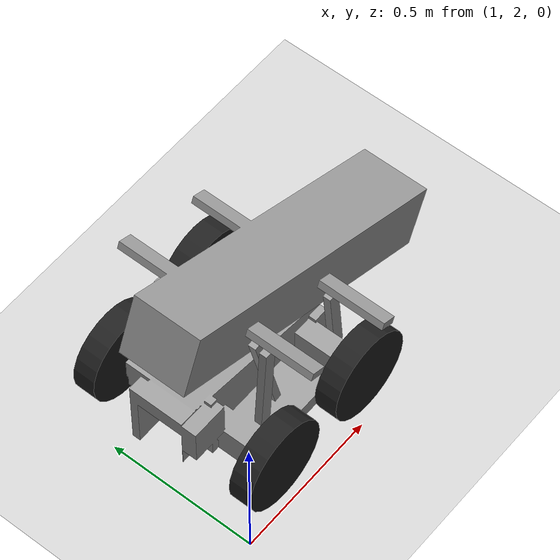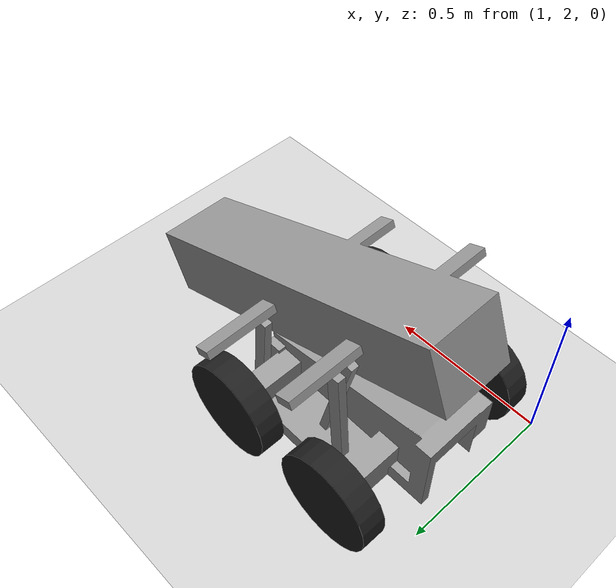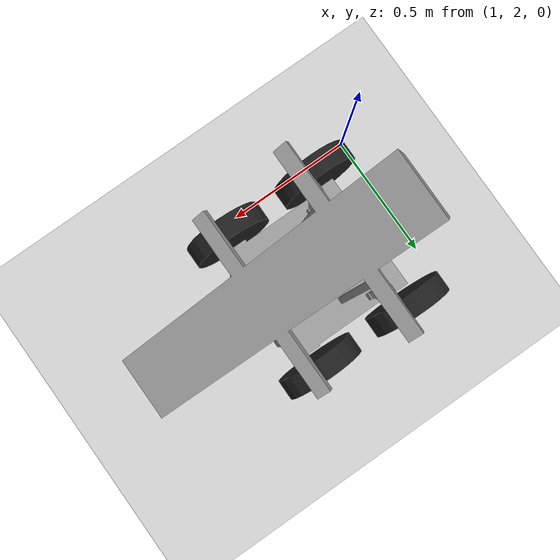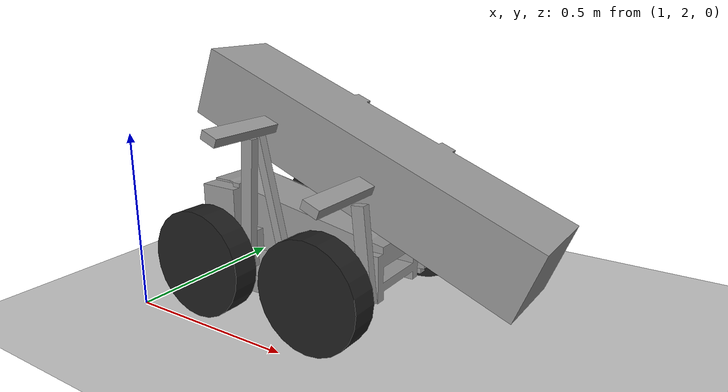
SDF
<sdf version="1.6">
 <world name="default">
  <model name="ground_plane">
   <static>1</static>
   <link name="link">
    <collision name="collision">
     <geometry><plane><normal>0 0 1</normal><size>100 100</size></plane></geometry>
     <surface><friction><ode><mu>100</mu><mu2>50</mu2></ode></friction></surface>
    </collision>
    <visual name="visual">
     <cast_shadows>0</cast_shadows>
     <geometry><plane><normal>0 0 1</normal><size>100 100</size></plane></geometry>
     <material>
      <script><uri>file://media/materials/scripts/gazebo.material</uri><name>Gazebo/Grey</name></script>
     </material>
    </visual>
   </link>
  </model>
  <model name="Digger_3">
   <link name="base_link">
    <pose>-0.180752 0.18451 -0.096283 0 -0 0</pose>
    <inertial>
     <mass>30</mass>
     <inertia>
      <ixx>0.166667</ixx>
      <ixy>0</ixy>
      <ixz>0</ixz>
      <iyy>0.166667</iyy>
      <iyz>0</iyz>
      <izz>0.166667</izz>
     </inertia>
    </inertial>
    <visual name="visual">
     <pose>0 0 0 1.5708 0 -1.5708</pose>
     <geometry>
      <mesh>
       <uri>/home/ssr/ros_kinetic/rmc_dev_ws/src/2018_robot/simulations/gazebo_rmc_sim/models/Digger/Simple_Chassis.stl</uri>
       <scale>0.001 0.001 0.001</scale>
      </mesh>
     </geometry>
     <material>
      <lighting>1</lighting>
      <script><uri>file://media/materials/scripts/gazebo.material</uri><name>Gazebo/Grey</name></script>
      <ambient>0.3 0.3 0.3 1</ambient>
      <diffuse>0.7 0.7 0.7 1</diffuse>
      <specular>0.01 0.01 0.01 1</specular>
      <emissive>0 0 0 1</emissive>
      <shader type="vertex"><normal_map>__default__</normal_map></shader>
     </material>
    </visual>
    <collision name="collision">
     <pose>0 0 0 1.5708 0 -1.5708</pose>
     <geometry>
      <mesh>
       <uri>/home/ssr/ros_kinetic/rmc_dev_ws/src/2018_robot/simulations/gazebo_rmc_sim/models/Digger/Simple_Chassis.stl</uri>
       <scale>0.001 0.001 0.001</scale>
      </mesh>
     </geometry>
     <surface>
      <friction>
       <ode><mu>1</mu><mu2>1</mu2><fdir1>0 0 0</fdir1><slip1>0</slip1><slip2>0</slip2></ode>
       <torsional>
        <coefficient>1</coefficient>
        <patch_radius>0</patch_radius>
        <surface_radius>0</surface_radius>
        <use_patch_radius>1</use_patch_radius>
        <ode><slip>0</slip></ode>
       </torsional>
      </friction>
      <bounce><restitution_coefficient>0</restitution_coefficient><threshold>1e+06</threshold></bounce>
      <contact>
       <collide_without_contact>0</collide_without_contact>
       <collide_without_contact_bitmask>1</collide_without_contact_bitmask>
       <collide_bitmask>1</collide_bitmask>
       <ode>
        <soft_cfm>0</soft_cfm>
        <soft_erp>0.2</soft_erp>
        <kp>1e+13</kp>
        <kd>1</kd>
        <max_vel>0.01</max_vel>
        <min_depth>0</min_depth>
       </ode>
       <bullet>
        <split_impulse>1</split_impulse>
        <split_impulse_penetration_threshold>-0.01</split_impulse_penetration_threshold>
        <soft_cfm>0</soft_cfm>
        <soft_erp>0.2</soft_erp>
        <kp>1e+13</kp>
        <kd>1</kd>
       </bullet>
      </contact>
     </surface>
    </collision>
   </link>
   <link name="arm">
    <pose>-0.325179 0.069854 0.358325 1.19198 -0 -1.5708</pose>
    <inertial>
     <mass>1</mass>
     <inertia>
      <ixx>0.166667</ixx>
      <ixy>0</ixy>
      <ixz>0</ixz>
      <iyy>0.166667</iyy>
      <iyz>0</iyz>
      <izz>0.166667</izz>
     </inertia>
    </inertial>
    <visual name="visual">
     <geometry>
      <mesh>
       <uri>/home/ssr/ros_kinetic/rmc_dev_ws/src/2018_robot/simulations/gazebo_rmc_sim/models/Digger/Simple_Arm.stl</uri>
       <scale>0.001 0.001 0.001</scale>
      </mesh>
     </geometry>
     <material>
      <lighting>1</lighting>
      <script><uri>file://media/materials/scripts/gazebo.material</uri><name>Gazebo/Grey</name></script>
      <ambient>0.3 0.3 0.3 1</ambient>
      <diffuse>0.7 0.7 0.7 1</diffuse>
      <specular>0.01 0.01 0.01 1</specular>
      <emissive>0 0 0 1</emissive>
      <shader type="vertex"><normal_map>__default__</normal_map></shader>
     </material>
    </visual>
   </link>
   <link name="back_left_actuator_bottom">
    <pose>-0.080752 0.146804 -0.01705 0 0.072198 0</pose>
    <inertial>
     <mass>1</mass>
     <inertia>
      <ixx>0.166667</ixx>
      <ixy>0</ixy>
      <ixz>0</ixz>
      <iyy>0.166667</iyy>
      <iyz>0</iyz>
      <izz>0.166667</izz>
     </inertia>
    </inertial>
    <visual name="visual">
     <pose>0 0 0.17195 0 -0 0</pose>
     <geometry><box><size>0.0381 0.0254 0.3429</size></box></geometry>
     <material>
      <lighting>1</lighting>
      <script><uri>file://media/materials/scripts/gazebo.material</uri><name>Gazebo/Grey</name></script>
      <ambient>0.3 0.3 0.3 1</ambient>
      <diffuse>0.7 0.7 0.7 1</diffuse>
      <specular>0.01 0.01 0.01 1</specular>
      <emissive>0 0 0 1</emissive>
      <shader type="vertex"><normal_map>__default__</normal_map></shader>
     </material>
    </visual>
    <collision name="collision">
     <pose>0 0 0.17195 0 -0 0</pose>
     <geometry><box><size>0.0381 0.0254 0.3429</size></box></geometry>
     <surface>
      <friction>
       <ode><mu>1</mu><mu2>1</mu2><fdir1>0 0 0</fdir1><slip1>0</slip1><slip2>0</slip2></ode>
       <torsional>
        <coefficient>1</coefficient>
        <patch_radius>0</patch_radius>
        <surface_radius>0</surface_radius>
        <use_patch_radius>1</use_patch_radius>
        <ode><slip>0</slip></ode>
       </torsional>
      </friction>
      <bounce><restitution_coefficient>0</restitution_coefficient><threshold>1e+06</threshold></bounce>
      <contact>
       <collide_without_contact>0</collide_without_contact>
       <collide_without_contact_bitmask>1</collide_without_contact_bitmask>
       <collide_bitmask>1</collide_bitmask>
       <ode>
        <soft_cfm>0</soft_cfm>
        <soft_erp>0.2</soft_erp>
        <kp>1e+13</kp>
        <kd>1</kd>
        <max_vel>0.01</max_vel>
        <min_depth>0</min_depth>
       </ode>
       <bullet>
        <split_impulse>1</split_impulse>
        <split_impulse_penetration_threshold>-0.01</split_impulse_penetration_threshold>
        <soft_cfm>0</soft_cfm>
        <soft_erp>0.2</soft_erp>
        <kp>1e+13</kp>
        <kd>1</kd>
       </bullet>
      </contact>
     </surface>
    </collision>
   </link>
   <link name="back_left_actuator_top">
    <pose>-0.080752 0.146804 -0.01705 0 0.072198 0</pose>
    <inertial>
     <mass>1</mass>
     <inertia>
      <ixx>0.166667</ixx>
      <ixy>0</ixy>
      <ixz>0</ixz>
      <iyy>0.166667</iyy>
      <iyz>0</iyz>
      <izz>0.166667</izz>
     </inertia>
    </inertial>
    <visual name="visual">
     <pose>0 0 0.17195 0 -0 0</pose>
     <geometry><box><size>0.0381 0.0254 0.3429</size></box></geometry>
     <material>
      <lighting>1</lighting>
      <script><uri>file://media/materials/scripts/gazebo.material</uri><name>Gazebo/Red</name></script>
      <ambient>0.3 0.3 0.3 1</ambient>
      <diffuse>0.7 0.7 0.7 1</diffuse>
      <specular>0.01 0.01 0.01 1</specular>
      <emissive>0 0 0 1</emissive>
      <shader type="vertex"><normal_map>__default__</normal_map></shader>
     </material>
    </visual>
    <collision name="collision">
     <pose>0 0 0.17195 0 -0 0</pose>
     <geometry><box><size>0.0381 0.0254 0.3429</size></box></geometry>
     <surface>
      <friction>
       <ode><mu>1</mu><mu2>1</mu2><fdir1>0 0 0</fdir1><slip1>0</slip1><slip2>0</slip2></ode>
       <torsional>
        <coefficient>1</coefficient>
        <patch_radius>0</patch_radius>
        <surface_radius>0</surface_radius>
        <use_patch_radius>1</use_patch_radius>
        <ode><slip>0</slip></ode>
       </torsional>
      </friction>
      <bounce><restitution_coefficient>0</restitution_coefficient><threshold>1e+06</threshold></bounce>
      <contact>
       <collide_without_contact>0</collide_without_contact>
       <collide_without_contact_bitmask>1</collide_without_contact_bitmask>
       <collide_bitmask>1</collide_bitmask>
       <ode>
        <soft_cfm>0</soft_cfm>
        <soft_erp>0.2</soft_erp>
        <kp>1e+13</kp>
        <kd>1</kd>
        <max_vel>0.01</max_vel>
        <min_depth>0</min_depth>
       </ode>
       <bullet>
        <split_impulse>1</split_impulse>
        <split_impulse_penetration_threshold>-0.01</split_impulse_penetration_threshold>
        <soft_cfm>0</soft_cfm>
        <soft_erp>0.2</soft_erp>
        <kp>1e+13</kp>
        <kd>1</kd>
       </bullet>
      </contact>
     </surface>
    </collision>
   </link>
   <link name="back_right_actuator_bottom">
    <pose>-0.080752 -0.225027 -0.01705 0 0.072198 0</pose>
    <inertial>
     <mass>1</mass>
     <inertia>
      <ixx>0.166667</ixx>
      <ixy>0</ixy>
      <ixz>0</ixz>
      <iyy>0.166667</iyy>
      <iyz>0</iyz>
      <izz>0.166667</izz>
     </inertia>
    </inertial>
    <visual name="visual">
     <pose>0 0 0.17195 0 -0 0</pose>
     <geometry><box><size>0.0381 0.0254 0.3429</size></box></geometry>
     <material>
      <lighting>1</lighting>
      <script><uri>file://media/materials/scripts/gazebo.material</uri><name>Gazebo/Grey</name></script>
      <ambient>0.3 0.3 0.3 1</ambient>
      <diffuse>0.7 0.7 0.7 1</diffuse>
      <specular>0.01 0.01 0.01 1</specular>
      <emissive>0 0 0 1</emissive>
      <shader type="vertex"><normal_map>__default__</normal_map></shader>
     </material>
    </visual>
    <collision name="collision">
     <pose>0 0 0.17195 0 -0 0</pose>
     <geometry><box><size>0.0381 0.0254 0.3429</size></box></geometry>
     <surface>
      <friction>
       <ode><mu>1</mu><mu2>1</mu2><fdir1>0 0 0</fdir1><slip1>0</slip1><slip2>0</slip2></ode>
       <torsional>
        <coefficient>1</coefficient>
        <patch_radius>0</patch_radius>
        <surface_radius>0</surface_radius>
        <use_patch_radius>1</use_patch_radius>
        <ode><slip>0</slip></ode>
       </torsional>
      </friction>
      <bounce><restitution_coefficient>0</restitution_coefficient><threshold>1e+06</threshold></bounce>
      <contact>
       <collide_without_contact>0</collide_without_contact>
       <collide_without_contact_bitmask>1</collide_without_contact_bitmask>
       <collide_bitmask>1</collide_bitmask>
       <ode>
        <soft_cfm>0</soft_cfm>
        <soft_erp>0.2</soft_erp>
        <kp>1e+13</kp>
        <kd>1</kd>
        <max_vel>0.01</max_vel>
        <min_depth>0</min_depth>
       </ode>
       <bullet>
        <split_impulse>1</split_impulse>
        <split_impulse_penetration_threshold>-0.01</split_impulse_penetration_threshold>
        <soft_cfm>0</soft_cfm>
        <soft_erp>0.2</soft_erp>
        <kp>1e+13</kp>
        <kd>1</kd>
       </bullet>
      </contact>
     </surface>
    </collision>
   </link>
   <link name="back_right_actuator_top">
    <pose>-0.080752 -0.225027 -0.01705 0 0.072198 0</pose>
    <inertial>
     <mass>1</mass>
     <inertia>
      <ixx>0.166667</ixx>
      <ixy>0</ixy>
      <ixz>0</ixz>
      <iyy>0.166667</iyy>
      <iyz>0</iyz>
      <izz>0.166667</izz>
     </inertia>
    </inertial>
    <visual name="visual">
     <pose>0 0 0.17195 0 -0 0</pose>
     <geometry><box><size>0.0381 0.0254 0.3429</size></box></geometry>
     <material>
      <lighting>1</lighting>
      <script><uri>file://media/materials/scripts/gazebo.material</uri><name>Gazebo/Red</name></script>
      <ambient>0.3 0.3 0.3 1</ambient>
      <diffuse>0.7 0.7 0.7 1</diffuse>
      <specular>0.01 0.01 0.01 1</specular>
      <emissive>0 0 0 1</emissive>
      <shader type="vertex"><normal_map>__default__</normal_map></shader>
     </material>
    </visual>
    <collision name="collision">
     <pose>0 0 0.17195 0 -0 0</pose>
     <geometry><box><size>0.0381 0.0254 0.3429</size></box></geometry>
     <surface>
      <friction>
       <ode><mu>1</mu><mu2>1</mu2><fdir1>0 0 0</fdir1><slip1>0</slip1><slip2>0</slip2></ode>
       <torsional>
        <coefficient>1</coefficient>
        <patch_radius>0</patch_radius>
        <surface_radius>0</surface_radius>
        <use_patch_radius>1</use_patch_radius>
        <ode><slip>0</slip></ode>
       </torsional>
      </friction>
      <bounce><restitution_coefficient>0</restitution_coefficient><threshold>1e+06</threshold></bounce>
      <contact>
       <collide_without_contact>0</collide_without_contact>
       <collide_without_contact_bitmask>1</collide_without_contact_bitmask>
       <collide_bitmask>1</collide_bitmask>
       <ode>
        <soft_cfm>0</soft_cfm>
        <soft_erp>0.2</soft_erp>
        <kp>1e+13</kp>
        <kd>1</kd>
        <max_vel>0.01</max_vel>
        <min_depth>0</min_depth>
       </ode>
       <bullet>
        <split_impulse>1</split_impulse>
        <split_impulse_penetration_threshold>-0.01</split_impulse_penetration_threshold>
        <soft_cfm>0</soft_cfm>
        <soft_erp>0.2</soft_erp>
        <kp>1e+13</kp>
        <kd>1</kd>
       </bullet>
      </contact>
     </surface>
    </collision>
   </link>
   <link name="front_left_actuator_bottom">
    <pose>0.299248 0.09451 -0.079616 0 -0.097496 0</pose>
    <inertial>
     <mass>1</mass>
     <inertia>
      <ixx>0.166667</ixx>
      <ixy>0</ixy>
      <ixz>0</ixz>
      <iyy>0.166667</iyy>
      <iyz>0</iyz>
      <izz>0.166667</izz>
     </inertia>
    </inertial>
    <visual name="visual">
     <pose>0 0 0.133333 0 -0 0</pose>
     <geometry><box><size>0.0381 0.0254 0.266667</size></box></geometry>
     <material>
      <lighting>1</lighting>
      <script><uri>file://media/materials/scripts/gazebo.material</uri><name>Gazebo/Grey</name></script>
      <ambient>0.3 0.3 0.3 1</ambient>
      <diffuse>0.7 0.7 0.7 1</diffuse>
      <specular>0.01 0.01 0.01 1</specular>
      <emissive>0 0 0 1</emissive>
      <shader type="vertex"><normal_map>__default__</normal_map></shader>
     </material>
    </visual>
    <collision name="collision">
     <pose>0 0 0.133333 0 -0 0</pose>
     <geometry><box><size>0.0381 0.0254 0.266667</size></box></geometry>
     <surface>
      <friction>
       <ode><mu>1</mu><mu2>1</mu2><fdir1>0 0 0</fdir1><slip1>0</slip1><slip2>0</slip2></ode>
       <torsional>
        <coefficient>1</coefficient>
        <patch_radius>0</patch_radius>
        <surface_radius>0</surface_radius>
        <use_patch_radius>1</use_patch_radius>
        <ode><slip>0</slip></ode>
       </torsional>
      </friction>
      <bounce><restitution_coefficient>0</restitution_coefficient><threshold>1e+06</threshold></bounce>
      <contact>
       <collide_without_contact>0</collide_without_contact>
       <collide_without_contact_bitmask>1</collide_without_contact_bitmask>
       <collide_bitmask>1</collide_bitmask>
       <ode>
        <soft_cfm>0</soft_cfm>
        <soft_erp>0.2</soft_erp>
        <kp>1e+13</kp>
        <kd>1</kd>
        <max_vel>0.01</max_vel>
        <min_depth>0</min_depth>
       </ode>
       <bullet>
        <split_impulse>1</split_impulse>
        <split_impulse_penetration_threshold>-0.01</split_impulse_penetration_threshold>
        <soft_cfm>0</soft_cfm>
        <soft_erp>0.2</soft_erp>
        <kp>1e+13</kp>
        <kd>1</kd>
       </bullet>
      </contact>
     </surface>
    </collision>
   </link>
   <link name="front_left_actuator_top">
    <pose>0.299248 0.09451 -0.079616 0 -0.097496 0</pose>
    <inertial>
     <mass>1</mass>
     <inertia>
      <ixx>0.166667</ixx>
      <ixy>0</ixy>
      <ixz>0</ixz>
      <iyy>0.166667</iyy>
      <iyz>0</iyz>
      <izz>0.166667</izz>
     </inertia>
    </inertial>
    <visual name="visual">
     <pose>0 0 0.133333 0 -0 0</pose>
     <geometry><box><size>0.0381 0.0254 0.266667</size></box></geometry>
     <material>
      <lighting>1</lighting>
      <script><uri>file://media/materials/scripts/gazebo.material</uri><name>Gazebo/Red</name></script>
      <ambient>0.3 0.3 0.3 1</ambient>
      <diffuse>0.7 0.7 0.7 1</diffuse>
      <specular>0.01 0.01 0.01 1</specular>
      <emissive>0 0 0 1</emissive>
      <shader type="vertex"><normal_map>__default__</normal_map></shader>
     </material>
    </visual>
    <collision name="collision">
     <pose>0 0 0.133333 0 -0 0</pose>
     <geometry><box><size>0.0381 0.0254 0.266667</size></box></geometry>
     <surface>
      <friction>
       <ode><mu>1</mu><mu2>1</mu2><fdir1>0 0 0</fdir1><slip1>0</slip1><slip2>0</slip2></ode>
       <torsional>
        <coefficient>1</coefficient>
        <patch_radius>0</patch_radius>
        <surface_radius>0</surface_radius>
        <use_patch_radius>1</use_patch_radius>
        <ode><slip>0</slip></ode>
       </torsional>
      </friction>
      <bounce><restitution_coefficient>0</restitution_coefficient><threshold>1e+06</threshold></bounce>
      <contact>
       <collide_without_contact>0</collide_without_contact>
       <collide_without_contact_bitmask>1</collide_without_contact_bitmask>
       <collide_bitmask>1</collide_bitmask>
       <ode>
        <soft_cfm>0</soft_cfm>
        <soft_erp>0.2</soft_erp>
        <kp>1e+13</kp>
        <kd>1</kd>
        <max_vel>0.01</max_vel>
        <min_depth>0</min_depth>
       </ode>
       <bullet>
        <split_impulse>1</split_impulse>
        <split_impulse_penetration_threshold>-0.01</split_impulse_penetration_threshold>
        <soft_cfm>0</soft_cfm>
        <soft_erp>0.2</soft_erp>
        <kp>1e+13</kp>
        <kd>1</kd>
       </bullet>
      </contact>
     </surface>
    </collision>
   </link>
   <link name="front_right_actuator_bottom">
    <pose>0.299248 -0.18549 -0.079616 0 -0.097496 0</pose>
    <inertial>
     <mass>1</mass>
     <inertia>
      <ixx>0.166667</ixx>
      <ixy>0</ixy>
      <ixz>0</ixz>
      <iyy>0.166667</iyy>
      <iyz>0</iyz>
      <izz>0.166667</izz>
     </inertia>
    </inertial>
    <visual name="visual">
     <pose>0 0 0.133333 0 -0 0</pose>
     <geometry><box><size>0.0381 0.0254 0.266667</size></box></geometry>
     <material>
      <lighting>1</lighting>
      <script><uri>file://media/materials/scripts/gazebo.material</uri><name>Gazebo/Grey</name></script>
      <ambient>0.3 0.3 0.3 1</ambient>
      <diffuse>0.7 0.7 0.7 1</diffuse>
      <specular>0.01 0.01 0.01 1</specular>
      <emissive>0 0 0 1</emissive>
      <shader type="vertex"><normal_map>__default__</normal_map></shader>
     </material>
    </visual>
    <collision name="collision">
     <pose>0 0 0.133333 0 -0 0</pose>
     <geometry><box><size>0.0381 0.0254 0.266667</size></box></geometry>
     <surface>
      <friction>
       <ode><mu>1</mu><mu2>1</mu2><fdir1>0 0 0</fdir1><slip1>0</slip1><slip2>0</slip2></ode>
       <torsional>
        <coefficient>1</coefficient>
        <patch_radius>0</patch_radius>
        <surface_radius>0</surface_radius>
        <use_patch_radius>1</use_patch_radius>
        <ode><slip>0</slip></ode>
       </torsional>
      </friction>
      <bounce><restitution_coefficient>0</restitution_coefficient><threshold>1e+06</threshold></bounce>
      <contact>
       <collide_without_contact>0</collide_without_contact>
       <collide_without_contact_bitmask>1</collide_without_contact_bitmask>
       <collide_bitmask>1</collide_bitmask>
       <ode>
        <soft_cfm>0</soft_cfm>
        <soft_erp>0.2</soft_erp>
        <kp>1e+13</kp>
        <kd>1</kd>
        <max_vel>0.01</max_vel>
        <min_depth>0</min_depth>
       </ode>
       <bullet>
        <split_impulse>1</split_impulse>
        <split_impulse_penetration_threshold>-0.01</split_impulse_penetration_threshold>
        <soft_cfm>0</soft_cfm>
        <soft_erp>0.2</soft_erp>
        <kp>1e+13</kp>
        <kd>1</kd>
       </bullet>
      </contact>
     </surface>
    </collision>
   </link>
   <link name="front_right_actuator_top">
    <pose>0.299248 -0.18549 -0.079616 0 -0.097496 0</pose>
    <inertial>
     <mass>1</mass>
     <inertia>
      <ixx>0.166667</ixx>
      <ixy>0</ixy>
      <ixz>0</ixz>
      <iyy>0.166667</iyy>
      <iyz>0</iyz>
      <izz>0.166667</izz>
     </inertia>
    </inertial>
    <visual name="visual">
     <pose>0 0 0.133333 0 -0 0</pose>
     <geometry><box><size>0.0381 0.0254 0.266667</size></box></geometry>
     <material>
      <lighting>1</lighting>
      <script><uri>file://media/materials/scripts/gazebo.material</uri><name>Gazebo/Red</name></script>
      <ambient>0.3 0.3 0.3 1</ambient>
      <diffuse>0.7 0.7 0.7 1</diffuse>
      <specular>0.01 0.01 0.01 1</specular>
      <emissive>0 0 0 1</emissive>
      <shader type="vertex"><normal_map>__default__</normal_map></shader>
     </material>
    </visual>
    <collision name="collision">
     <pose>0 0 0.133333 0 -0 0</pose>
     <geometry><box><size>0.0381 0.0254 0.266667</size></box></geometry>
     <surface>
      <friction>
       <ode><mu>1</mu><mu2>1</mu2><fdir1>0 0 0</fdir1><slip1>0</slip1><slip2>0</slip2></ode>
       <torsional>
        <coefficient>1</coefficient>
        <patch_radius>0</patch_radius>
        <surface_radius>0</surface_radius>
        <use_patch_radius>1</use_patch_radius>
        <ode><slip>0</slip></ode>
       </torsional>
      </friction>
      <bounce><restitution_coefficient>0</restitution_coefficient><threshold>1e+06</threshold></bounce>
      <contact>
       <collide_without_contact>0</collide_without_contact>
       <collide_without_contact_bitmask>1</collide_without_contact_bitmask>
       <collide_bitmask>1</collide_bitmask>
       <ode>
        <soft_cfm>0</soft_cfm>
        <soft_erp>0.2</soft_erp>
        <kp>1e+13</kp>
        <kd>1</kd>
        <max_vel>0.01</max_vel>
        <min_depth>0</min_depth>
       </ode>
       <bullet>
        <split_impulse>1</split_impulse>
        <split_impulse_penetration_threshold>-0.01</split_impulse_penetration_threshold>
        <soft_cfm>0</soft_cfm>
        <soft_erp>0.2</soft_erp>
        <kp>1e+13</kp>
        <kd>1</kd>
       </bullet>
      </contact>
     </surface>
    </collision>
   </link>
   <link name="left_support">
    <pose>0.024618 0.099558 -0.043898 0 -0.224957 0</pose>
    <inertial>
     <mass>1</mass>
     <inertia>
      <ixx>0.166667</ixx>
      <ixy>0</ixy>
      <ixz>0</ixz>
      <iyy>0.166667</iyy>
      <iyz>0</iyz>
      <izz>0.166667</izz>
     </inertia>
    </inertial>
    <visual name="visual">
     <pose>0 0 0.1905 0 -0 0</pose>
     <geometry><box><size>0.0254 0.0254 0.381</size></box></geometry>
     <material>
      <lighting>1</lighting>
      <script><uri>file://media/materials/scripts/gazebo.material</uri><name>Gazebo/Grey</name></script>
      <ambient>0.3 0.3 0.3 1</ambient>
      <diffuse>0.7 0.7 0.7 1</diffuse>
      <specular>0.01 0.01 0.01 1</specular>
      <emissive>0 0 0 1</emissive>
      <shader type="vertex"><normal_map>__default__</normal_map></shader>
     </material>
    </visual>
    <collision name="collision">
     <pose>0 0 0.1905 0 -0 0</pose>
     <geometry><box><size>0.0254 0.0254 0.381</size></box></geometry>
     <surface>
      <friction>
       <ode><mu>1</mu><mu2>1</mu2><fdir1>0 0 0</fdir1><slip1>0</slip1><slip2>0</slip2></ode>
       <torsional>
        <coefficient>1</coefficient>
        <patch_radius>0</patch_radius>
        <surface_radius>0</surface_radius>
        <use_patch_radius>1</use_patch_radius>
        <ode><slip>0</slip></ode>
       </torsional>
      </friction>
      <bounce><restitution_coefficient>0</restitution_coefficient><threshold>1e+06</threshold></bounce>
      <contact>
       <collide_without_contact>0</collide_without_contact>
       <collide_without_contact_bitmask>1</collide_without_contact_bitmask>
       <collide_bitmask>1</collide_bitmask>
       <ode>
        <soft_cfm>0</soft_cfm>
        <soft_erp>0.2</soft_erp>
        <kp>1e+13</kp>
        <kd>1</kd>
        <max_vel>0.01</max_vel>
        <min_depth>0</min_depth>
       </ode>
       <bullet>
        <split_impulse>1</split_impulse>
        <split_impulse_penetration_threshold>-0.01</split_impulse_penetration_threshold>
        <soft_cfm>0</soft_cfm>
        <soft_erp>0.2</soft_erp>
        <kp>1e+13</kp>
        <kd>1</kd>
       </bullet>
      </contact>
     </surface>
    </collision>
   </link>
   <link name="back_right_wheel">
    <pose>-0.147977 -0.325036 -0.014715 1.5708 -0 0</pose>
    <inertial>
     <mass>1</mass>
     <inertia><ixx>0.145833</ixx><ixy>0</ixy><ixz>0</ixz><iyy>0.145833</iyy><iyz>0</iyz><izz>0.125</izz></inertia>
    </inertial>
    <visual name="visual">
     <geometry><cylinder><radius>0.1524</radius><length>0.0762</length></cylinder></geometry>
     <material>
      <lighting>1</lighting>
      <script><uri>file://media/materials/scripts/gazebo.material</uri><name>Gazebo/Black</name></script>
      <ambient>0.3 0.3 0.3 1</ambient>
      <diffuse>0.7 0.7 0.7 1</diffuse>
      <specular>0.01 0.01 0.01 1</specular>
      <emissive>0 0 0 1</emissive>
      <shader type="vertex"><normal_map>__default__</normal_map></shader>
     </material>
    </visual>
    <collision name="collision">
     <geometry><cylinder><radius>0.1524</radius><length>0.0762</length></cylinder></geometry>
     <surface>
      <friction>
       <ode><mu>1</mu><mu2>1</mu2><fdir1>0 0 0</fdir1><slip1>0</slip1><slip2>0</slip2></ode>
       <torsional>
        <coefficient>1</coefficient>
        <patch_radius>0</patch_radius>
        <surface_radius>0</surface_radius>
        <use_patch_radius>1</use_patch_radius>
        <ode><slip>0</slip></ode>
       </torsional>
      </friction>
      <bounce><restitution_coefficient>0</restitution_coefficient><threshold>1e+06</threshold></bounce>
      <contact>
       <collide_without_contact>0</collide_without_contact>
       <collide_without_contact_bitmask>1</collide_without_contact_bitmask>
       <collide_bitmask>1</collide_bitmask>
       <ode>
        <soft_cfm>0</soft_cfm>
        <soft_erp>0.2</soft_erp>
        <kp>1e+13</kp>
        <kd>1</kd>
        <max_vel>0.01</max_vel>
        <min_depth>0</min_depth>
       </ode>
       <bullet>
        <split_impulse>1</split_impulse>
        <split_impulse_penetration_threshold>-0.01</split_impulse_penetration_threshold>
        <soft_cfm>0</soft_cfm>
        <soft_erp>0.2</soft_erp>
        <kp>1e+13</kp>
        <kd>1</kd>
       </bullet>
      </contact>
     </surface>
    </collision>
   </link>
   <link name="front_right_wheel">
    <pose>0.230905 -0.325036 -0.014715 1.5708 7e-06 -0.007032</pose>
    <inertial>
     <mass>1</mass>
     <inertia><ixx>0.145833</ixx><ixy>0</ixy><ixz>0</ixz><iyy>0.145833</iyy><iyz>0</iyz><izz>0.125</izz></inertia>
    </inertial>
    <visual name="visual">
     <geometry><cylinder><radius>0.1524</radius><length>0.0762</length></cylinder></geometry>
     <material>
      <lighting>1</lighting>
      <script><uri>file://media/materials/scripts/gazebo.material</uri><name>Gazebo/Black</name></script>
      <ambient>0.3 0.3 0.3 1</ambient>
      <diffuse>0.7 0.7 0.7 1</diffuse>
      <specular>0.01 0.01 0.01 1</specular>
      <emissive>0 0 0 1</emissive>
      <shader type="vertex"><normal_map>__default__</normal_map></shader>
     </material>
    </visual>
    <collision name="collision">
     <geometry><cylinder><radius>0.1524</radius><length>0.0762</length></cylinder></geometry>
     <surface>
      <friction>
       <ode><mu>1</mu><mu2>1</mu2><fdir1>0 0 0</fdir1><slip1>0</slip1><slip2>0</slip2></ode>
       <torsional>
        <coefficient>1</coefficient>
        <patch_radius>0</patch_radius>
        <surface_radius>0</surface_radius>
        <use_patch_radius>1</use_patch_radius>
        <ode><slip>0</slip></ode>
       </torsional>
      </friction>
      <bounce><restitution_coefficient>0</restitution_coefficient><threshold>1e+06</threshold></bounce>
      <contact>
       <collide_without_contact>0</collide_without_contact>
       <collide_without_contact_bitmask>1</collide_without_contact_bitmask>
       <collide_bitmask>1</collide_bitmask>
       <ode>
        <soft_cfm>0</soft_cfm>
        <soft_erp>0.2</soft_erp>
        <kp>1e+13</kp>
        <kd>1</kd>
        <max_vel>0.01</max_vel>
        <min_depth>0</min_depth>
       </ode>
       <bullet>
        <split_impulse>1</split_impulse>
        <split_impulse_penetration_threshold>-0.01</split_impulse_penetration_threshold>
        <soft_cfm>0</soft_cfm>
        <soft_erp>0.2</soft_erp>
        <kp>1e+13</kp>
        <kd>1</kd>
       </bullet>
      </contact>
     </surface>
    </collision>
   </link>
   <link name="back_left_wheel">
    <pose>-0.147977 0.243888 -0.014715 1.5708 7e-06 -0.007032</pose>
    <inertial>
     <mass>1</mass>
     <inertia><ixx>0.145833</ixx><ixy>0</ixy><ixz>0</ixz><iyy>0.145833</iyy><iyz>0</iyz><izz>0.125</izz></inertia>
    </inertial>
    <visual name="visual">
     <geometry><cylinder><radius>0.1524</radius><length>0.0762</length></cylinder></geometry>
     <material>
      <lighting>1</lighting>
      <script><uri>file://media/materials/scripts/gazebo.material</uri><name>Gazebo/Black</name></script>
      <ambient>0.3 0.3 0.3 1</ambient>
      <diffuse>0.7 0.7 0.7 1</diffuse>
      <specular>0.01 0.01 0.01 1</specular>
      <emissive>0 0 0 1</emissive>
      <shader type="vertex"><normal_map>__default__</normal_map></shader>
     </material>
    </visual>
    <collision name="collision">
     <geometry><cylinder><radius>0.1524</radius><length>0.0762</length></cylinder></geometry>
     <surface>
      <friction>
       <ode><mu>1</mu><mu2>1</mu2><fdir1>0 0 0</fdir1><slip1>0</slip1><slip2>0</slip2></ode>
       <torsional>
        <coefficient>1</coefficient>
        <patch_radius>0</patch_radius>
        <surface_radius>0</surface_radius>
        <use_patch_radius>1</use_patch_radius>
        <ode><slip>0</slip></ode>
       </torsional>
      </friction>
      <bounce><restitution_coefficient>0</restitution_coefficient><threshold>1e+06</threshold></bounce>
      <contact>
       <collide_without_contact>0</collide_without_contact>
       <collide_without_contact_bitmask>1</collide_without_contact_bitmask>
       <collide_bitmask>1</collide_bitmask>
       <ode>
        <soft_cfm>0</soft_cfm>
        <soft_erp>0.2</soft_erp>
        <kp>1e+13</kp>
        <kd>1</kd>
        <max_vel>0.01</max_vel>
        <min_depth>0</min_depth>
       </ode>
       <bullet>
        <split_impulse>1</split_impulse>
        <split_impulse_penetration_threshold>-0.01</split_impulse_penetration_threshold>
        <soft_cfm>0</soft_cfm>
        <soft_erp>0.2</soft_erp>
        <kp>1e+13</kp>
        <kd>1</kd>
       </bullet>
      </contact>
     </surface>
    </collision>
   </link>
   <link name="front_left_wheel">
    <pose>0.230905 0.243888 -0.014715 1.5708 7e-06 -0.007032</pose>
    <inertial>
     <mass>1</mass>
     <inertia><ixx>0.145833</ixx><ixy>0</ixy><ixz>0</ixz><iyy>0.145833</iyy><iyz>0</iyz><izz>0.125</izz></inertia>
    </inertial>
    <visual name="visual">
     <geometry><cylinder><radius>0.1524</radius><length>0.0762</length></cylinder></geometry>
     <material>
      <lighting>1</lighting>
      <script><uri>file://media/materials/scripts/gazebo.material</uri><name>Gazebo/Black</name></script>
      <ambient>0.3 0.3 0.3 1</ambient>
      <diffuse>0.7 0.7 0.7 1</diffuse>
      <specular>0.01 0.01 0.01 1</specular>
      <emissive>0 0 0 1</emissive>
      <shader type="vertex"><normal_map>__default__</normal_map></shader>
     </material>
    </visual>
    <collision name="collision">
     <geometry><cylinder><radius>0.1524</radius><length>0.0762</length></cylinder></geometry>
     <surface>
      <friction>
       <ode><mu>1</mu><mu2>1</mu2><fdir1>0 0 0</fdir1><slip1>0</slip1><slip2>0</slip2></ode>
       <torsional>
        <coefficient>1</coefficient>
        <patch_radius>0</patch_radius>
        <surface_radius>0</surface_radius>
        <use_patch_radius>1</use_patch_radius>
        <ode><slip>0</slip></ode>
       </torsional>
      </friction>
      <bounce><restitution_coefficient>0</restitution_coefficient><threshold>1e+06</threshold></bounce>
      <contact>
       <collide_without_contact>0</collide_without_contact>
       <collide_without_contact_bitmask>1</collide_without_contact_bitmask>
       <collide_bitmask>1</collide_bitmask>
       <ode>
        <soft_cfm>0</soft_cfm>
        <soft_erp>0.2</soft_erp>
        <kp>1e+13</kp>
        <kd>1</kd>
        <max_vel>0.01</max_vel>
        <min_depth>0</min_depth>
       </ode>
       <bullet>
        <split_impulse>1</split_impulse>
        <split_impulse_penetration_threshold>-0.01</split_impulse_penetration_threshold>
        <soft_cfm>0</soft_cfm>
        <soft_erp>0.2</soft_erp>
        <kp>1e+13</kp>
        <kd>1</kd>
       </bullet>
      </contact>
     </surface>
    </collision>
   </link>
   <link name="right_support">
    <pose>0.024618 -0.184722 -0.043898 0 -0.224957 0</pose>
    <inertial>
     <mass>1</mass>
     <inertia>
      <ixx>0.166667</ixx>
      <ixy>0</ixy>
      <ixz>0</ixz>
      <iyy>0.166667</iyy>
      <iyz>0</iyz>
      <izz>0.166667</izz>
     </inertia>
    </inertial>
    <visual name="visual">
     <pose>0 0 0.1905 0 -0 0</pose>
     <geometry><box><size>0.0254 0.0254 0.381</size></box></geometry>
     <material>
      <lighting>1</lighting>
      <script><uri>file://media/materials/scripts/gazebo.material</uri><name>Gazebo/Grey</name></script>
      <ambient>0.3 0.3 0.3 1</ambient>
      <diffuse>0.7 0.7 0.7 1</diffuse>
      <specular>0.01 0.01 0.01 1</specular>
      <emissive>0 0 0 1</emissive>
      <shader type="vertex"><normal_map>__default__</normal_map></shader>
     </material>
    </visual>
    <collision name="collision">
     <pose>0 0 0.1905 0 -0 0</pose>
     <geometry><box><size>0.0254 0.0254 0.381</size></box></geometry>
     <surface>
      <friction>
       <ode><mu>1</mu><mu2>1</mu2><fdir1>0 0 0</fdir1><slip1>0</slip1><slip2>0</slip2></ode>
       <torsional>
        <coefficient>1</coefficient>
        <patch_radius>0</patch_radius>
        <surface_radius>0</surface_radius>
        <use_patch_radius>1</use_patch_radius>
        <ode><slip>0</slip></ode>
       </torsional>
      </friction>
      <bounce><restitution_coefficient>0</restitution_coefficient><threshold>1e+06</threshold></bounce>
      <contact>
       <collide_without_contact>0</collide_without_contact>
       <collide_without_contact_bitmask>1</collide_without_contact_bitmask>
       <collide_bitmask>1</collide_bitmask>
       <ode>
        <soft_cfm>0</soft_cfm>
        <soft_erp>0.2</soft_erp>
        <kp>1e+13</kp>
        <kd>1</kd>
        <max_vel>0.01</max_vel>
        <min_depth>0</min_depth>
       </ode>
       <bullet>
        <split_impulse>1</split_impulse>
        <split_impulse_penetration_threshold>-0.01</split_impulse_penetration_threshold>
        <soft_cfm>0</soft_cfm>
        <soft_erp>0.2</soft_erp>
        <kp>1e+13</kp>
        <kd>1</kd>
       </bullet>
      </contact>
     </surface>
    </collision>
   </link>
   <joint name="actuator_back_left" type="prismatic">
    <parent>back_left_actuator_top</parent>
    <child>back_left_actuator_bottom</child>
    <pose>0 0 0.16 0 -0 0</pose>
    <axis>
     <xyz>0 0 -1</xyz>
     <use_parent_model_frame>0</use_parent_model_frame>
     <limit><lower>0</lower><upper>0.2286</upper><effort>-1</effort><velocity>0.1</velocity></limit>
     <dynamics>
      <spring_reference>0</spring_reference>
      <spring_stiffness>0</spring_stiffness>
      <damping>10</damping>
      <friction>10</friction>
     </dynamics>
    </axis>
    <physics>
     <ode><limit><cfm>0</cfm><erp>0.2</erp></limit><suspension><cfm>0</cfm><erp>0.2</erp></suspension></ode>
    </physics>
   </joint>
   <joint name="actuator_back_right" type="prismatic">
    <parent>back_right_actuator_top</parent>
    <child>back_right_actuator_bottom</child>
    <pose>0 0 0.15 0 -0 0</pose>
    <axis>
     <xyz>0 0 -1</xyz>
     <use_parent_model_frame>0</use_parent_model_frame>
     <limit><lower>0</lower><upper>0.2286</upper><effort>-1</effort><velocity>0.1</velocity></limit>
     <dynamics>
      <spring_reference>0</spring_reference>
      <spring_stiffness>0</spring_stiffness>
      <damping>10</damping>
      <friction>10</friction>
     </dynamics>
    </axis>
    <physics>
     <ode><limit><cfm>0</cfm><erp>0.2</erp></limit><suspension><cfm>0</cfm><erp>0.2</erp></suspension></ode>
    </physics>
   </joint>
   <joint name="actuator_front_left" type="prismatic">
    <parent>front_left_actuator_top</parent>
    <child>front_left_actuator_bottom</child>
    <pose>0 0 0.1 0 -0 0</pose>
    <axis>
     <xyz>0 0 -1</xyz>
     <use_parent_model_frame>0</use_parent_model_frame>
     <limit><lower>0</lower><upper>0.1524</upper><effort>-1</effort><velocity>0.1</velocity></limit>
     <dynamics>
      <spring_reference>0</spring_reference>
      <spring_stiffness>0</spring_stiffness>
      <damping>10</damping>
      <friction>10</friction>
     </dynamics>
    </axis>
    <physics>
     <ode><limit><cfm>0</cfm><erp>0.2</erp></limit><suspension><cfm>0</cfm><erp>0.2</erp></suspension></ode>
    </physics>
   </joint>
   <joint name="actuator_front_right" type="prismatic">
    <parent>front_right_actuator_top</parent>
    <child>front_right_actuator_bottom</child>
    <pose>0 0 0.14 0 -0 0</pose>
    <axis>
     <xyz>0 0 -1</xyz>
     <use_parent_model_frame>0</use_parent_model_frame>
     <limit><lower>0</lower><upper>0.1524</upper><effort>-1</effort><velocity>0.1</velocity></limit>
     <dynamics>
      <spring_reference>0</spring_reference>
      <spring_stiffness>0</spring_stiffness>
      <damping>10</damping>
      <friction>10</friction>
     </dynamics>
    </axis>
    <physics>
     <ode><limit><cfm>0</cfm><erp>0.2</erp></limit><suspension><cfm>0</cfm><erp>0.2</erp></suspension></ode>
    </physics>
   </joint>
   <joint name="back_left_wheel" type="revolute">
    <parent>base_link</parent>
    <child>back_left_wheel</child>
    <axis>
     <xyz>0 0 1</xyz>
     <use_parent_model_frame>0</use_parent_model_frame>
     <limit>
      <lower>-1.79769e+308</lower>
      <upper>1.79769e+308</upper>
      <effort>-1</effort>
      <velocity>-1</velocity>
     </limit>
     <dynamics>
      <spring_reference>0</spring_reference>
      <spring_stiffness>0</spring_stiffness>
      <damping>10</damping>
     </dynamics>
    </axis>
    <physics>
     <ode><limit><cfm>0</cfm><erp>0.2</erp></limit><suspension><cfm>0</cfm><erp>0.2</erp></suspension></ode>
    </physics>
   </joint>
   <joint name="front_left_wheel" type="revolute">
    <parent>base_link</parent>
    <child>front_left_wheel</child>
    <axis>
     <xyz>0 0 1</xyz>
     <use_parent_model_frame>0</use_parent_model_frame>
     <limit>
      <lower>-1.79769e+308</lower>
      <upper>1.79769e+308</upper>
      <effort>-1</effort>
      <velocity>-1</velocity>
     </limit>
     <dynamics>
      <spring_reference>0</spring_reference>
      <spring_stiffness>0</spring_stiffness>
      <damping>10</damping>
     </dynamics>
    </axis>
    <physics>
     <ode><limit><cfm>0</cfm><erp>0.2</erp></limit><suspension><cfm>0</cfm><erp>0.2</erp></suspension></ode>
    </physics>
   </joint>
   <joint name="back_right_wheel" type="revolute">
    <parent>base_link</parent>
    <child>back_right_wheel</child>
    <axis>
     <xyz>0 0 1</xyz>
     <use_parent_model_frame>0</use_parent_model_frame>
     <limit>
      <lower>-1.79769e+308</lower>
      <upper>1.79769e+308</upper>
      <effort>-1</effort>
      <velocity>-1</velocity>
     </limit>
     <dynamics>
      <spring_reference>0</spring_reference>
      <spring_stiffness>0</spring_stiffness>
      <damping>10</damping>
     </dynamics>
    </axis>
    <physics>
     <ode><limit><cfm>0</cfm><erp>0.2</erp></limit><suspension><cfm>0</cfm><erp>0.2</erp></suspension></ode>
    </physics>
   </joint>
   <joint name="front_right_wheel" type="revolute">
    <parent>base_link</parent>
    <child>front_right_wheel</child>
    <axis>
     <xyz>0 0 1</xyz>
     <use_parent_model_frame>0</use_parent_model_frame>
     <limit>
      <lower>-1.79769e+308</lower>
      <upper>1.79769e+308</upper>
      <effort>-1</effort>
      <velocity>-1</velocity>
     </limit>
     <dynamics>
      <spring_reference>0</spring_reference>
      <spring_stiffness>0</spring_stiffness>
      <damping>10</damping>
     </dynamics>
    </axis>
    <physics>
     <ode><limit><cfm>0</cfm><erp>0.2</erp></limit><suspension><cfm>0</cfm><erp>0.2</erp></suspension></ode>
    </physics>
   </joint>
   <joint name="back_left_actuator_bottom_base_joint" type="revolute">
    <parent>base_link</parent>
    <child>back_left_actuator_bottom</child>
    <axis>
     <xyz>0 1 0</xyz>
     <use_parent_model_frame>0</use_parent_model_frame>
     <limit>
      <lower>-1.79769e+308</lower>
      <upper>1.79769e+308</upper>
      <effort>-1</effort>
      <velocity>-1</velocity>
     </limit>
     <dynamics>
      <spring_reference>0</spring_reference>
      <spring_stiffness>0</spring_stiffness>
      <damping>0</damping>
      <friction>0</friction>
     </dynamics>
    </axis>
    <physics>
     <ode><limit><cfm>0</cfm><erp>0.2</erp></limit><suspension><cfm>0</cfm><erp>0.2</erp></suspension></ode>
    </physics>
   </joint>
   <joint name="back_left_actuator_top_arm_joint" type="revolute">
    <parent>arm</parent>
    <child>back_left_actuator_top</child>
    <pose>0 0 0.3429 0 -0 0</pose>
    <axis>
     <xyz>0 1 0</xyz>
     <use_parent_model_frame>0</use_parent_model_frame>
     <limit>
      <lower>-1.79769e+308</lower>
      <upper>1.79769e+308</upper>
      <effort>-1</effort>
      <velocity>-1</velocity>
     </limit>
     <dynamics>
      <spring_reference>0</spring_reference>
      <spring_stiffness>0</spring_stiffness>
      <damping>0</damping>
      <friction>0</friction>
     </dynamics>
    </axis>
    <physics>
     <ode><limit><cfm>0</cfm><erp>0.2</erp></limit><suspension><cfm>0</cfm><erp>0.2</erp></suspension></ode>
    </physics>
   </joint>
   <joint name="back_right_actuator_bottom_base_joint" type="revolute">
    <parent>base_link</parent>
    <child>back_right_actuator_bottom</child>
    <axis>
     <xyz>0 1 0</xyz>
     <use_parent_model_frame>0</use_parent_model_frame>
     <limit>
      <lower>-1.79769e+308</lower>
      <upper>1.79769e+308</upper>
      <effort>-1</effort>
      <velocity>-1</velocity>
     </limit>
     <dynamics>
      <spring_reference>0</spring_reference>
      <spring_stiffness>0</spring_stiffness>
      <damping>0</damping>
      <friction>0</friction>
     </dynamics>
    </axis>
    <physics>
     <ode><limit><cfm>0</cfm><erp>0.2</erp></limit><suspension><cfm>0</cfm><erp>0.2</erp></suspension></ode>
    </physics>
   </joint>
   <joint name="back_right_actuator_top_arm_joint" type="revolute">
    <parent>arm</parent>
    <child>back_right_actuator_top</child>
    <pose>0 0 0.3429 0 -0 0</pose>
    <axis>
     <xyz>0 1 0</xyz>
     <use_parent_model_frame>0</use_parent_model_frame>
     <limit>
      <lower>-1.79769e+308</lower>
      <upper>1.79769e+308</upper>
      <effort>-1</effort>
      <velocity>-1</velocity>
     </limit>
     <dynamics>
      <spring_reference>0</spring_reference>
      <spring_stiffness>0</spring_stiffness>
      <damping>0</damping>
      <friction>0</friction>
     </dynamics>
    </axis>
    <physics>
     <ode><limit><cfm>0</cfm><erp>0.2</erp></limit><suspension><cfm>0</cfm><erp>0.2</erp></suspension></ode>
    </physics>
   </joint>
   <joint name="front_left_actuator_bottom_base_joint" type="revolute">
    <parent>base_link</parent>
    <child>front_left_actuator_bottom</child>
    <axis>
     <xyz>0 1 0</xyz>
     <use_parent_model_frame>0</use_parent_model_frame>
     <limit>
      <lower>-1.79769e+308</lower>
      <upper>1.79769e+308</upper>
      <effort>-1</effort>
      <velocity>-1</velocity>
     </limit>
     <dynamics>
      <spring_reference>0</spring_reference>
      <spring_stiffness>0</spring_stiffness>
      <damping>0</damping>
      <friction>0</friction>
     </dynamics>
    </axis>
    <physics>
     <ode><limit><cfm>0</cfm><erp>0.2</erp></limit><suspension><cfm>0</cfm><erp>0.2</erp></suspension></ode>
    </physics>
   </joint>
   <joint name="front_left_actuator_top_arm_joint" type="revolute">
    <parent>arm</parent>
    <child>front_left_actuator_top</child>
    <pose>0 0 0.266667 0 -0 0</pose>
    <axis>
     <xyz>0 1 0</xyz>
     <use_parent_model_frame>0</use_parent_model_frame>
     <limit>
      <lower>-1.79769e+308</lower>
      <upper>1.79769e+308</upper>
      <effort>-1</effort>
      <velocity>-1</velocity>
     </limit>
     <dynamics>
      <spring_reference>0</spring_reference>
      <spring_stiffness>0</spring_stiffness>
      <damping>0</damping>
      <friction>0</friction>
     </dynamics>
    </axis>
    <physics>
     <ode><limit><cfm>0</cfm><erp>0.2</erp></limit><suspension><cfm>0</cfm><erp>0.2</erp></suspension></ode>
    </physics>
   </joint>
   <joint name="front_right_actuator_bottom_base_joint" type="revolute">
    <parent>base_link</parent>
    <child>front_right_actuator_bottom</child>
    <axis>
     <xyz>0 1 0</xyz>
     <use_parent_model_frame>0</use_parent_model_frame>
     <limit>
      <lower>-1.79769e+308</lower>
      <upper>1.79769e+308</upper>
      <effort>-1</effort>
      <velocity>-1</velocity>
     </limit>
     <dynamics>
      <spring_reference>0</spring_reference>
      <spring_stiffness>0</spring_stiffness>
      <damping>0</damping>
      <friction>0</friction>
     </dynamics>
    </axis>
    <physics>
     <ode><limit><cfm>0</cfm><erp>0.2</erp></limit><suspension><cfm>0</cfm><erp>0.2</erp></suspension></ode>
    </physics>
   </joint>
   <joint name="front_right_actuator_top_arm_joint" type="revolute">
    <parent>arm</parent>
    <child>front_right_actuator_top</child>
    <pose>0 0 0.266667 0 -0 0</pose>
    <axis>
     <xyz>0 1 0</xyz>
     <use_parent_model_frame>0</use_parent_model_frame>
     <limit>
      <lower>-1.79769e+308</lower>
      <upper>1.79769e+308</upper>
      <effort>-1</effort>
      <velocity>-1</velocity>
     </limit>
     <dynamics>
      <spring_reference>0</spring_reference>
      <spring_stiffness>0</spring_stiffness>
      <damping>0</damping>
      <friction>0</friction>
     </dynamics>
    </axis>
    <physics>
     <ode><limit><cfm>0</cfm><erp>0.2</erp></limit><suspension><cfm>0</cfm><erp>0.2</erp></suspension></ode>
    </physics>
   </joint>
   <joint name="left_support_arm_joint" type="revolute">
    <parent>arm</parent>
    <child>left_support</child>
    <pose>0 0 0.381 0 -0 0</pose>
    <axis>
     <xyz>0 1 0</xyz>
     <use_parent_model_frame>0</use_parent_model_frame>
     <limit>
      <lower>-1.79769e+308</lower>
      <upper>1.79769e+308</upper>
      <effort>-1</effort>
      <velocity>-1</velocity>
     </limit>
     <dynamics>
      <spring_reference>0</spring_reference>
      <spring_stiffness>0</spring_stiffness>
      <damping>0</damping>
      <friction>0</friction>
     </dynamics>
    </axis>
    <physics>
     <ode><limit><cfm>0</cfm><erp>0.2</erp></limit><suspension><cfm>0</cfm><erp>0.2</erp></suspension></ode>
    </physics>
   </joint>
   <joint name="left_support_base_joint" type="revolute">
    <parent>base_link</parent>
    <child>left_support</child>
    <axis>
     <xyz>0 1 0</xyz>
     <use_parent_model_frame>0</use_parent_model_frame>
     <limit>
      <lower>-1.79769e+308</lower>
      <upper>1.79769e+308</upper>
      <effort>-1</effort>
      <velocity>-1</velocity>
     </limit>
     <dynamics>
      <spring_reference>0</spring_reference>
      <spring_stiffness>0</spring_stiffness>
      <damping>0</damping>
      <friction>0</friction>
     </dynamics>
    </axis>
    <physics>
     <ode><limit><cfm>0</cfm><erp>0.2</erp></limit><suspension><cfm>0</cfm><erp>0.2</erp></suspension></ode>
    </physics>
   </joint>
   <joint name="right_support_arm_joint" type="revolute">
    <parent>arm</parent>
    <child>right_support</child>
    <pose>0 0 0.381 0 -0 0</pose>
    <axis>
     <xyz>0 1 0</xyz>
     <use_parent_model_frame>0</use_parent_model_frame>
     <limit>
      <lower>-1.79769e+308</lower>
      <upper>1.79769e+308</upper>
      <effort>-1</effort>
      <velocity>-1</velocity>
     </limit>
     <dynamics>
      <spring_reference>0</spring_reference>
      <spring_stiffness>0</spring_stiffness>
      <damping>0</damping>
      <friction>0</friction>
     </dynamics>
    </axis>
    <physics>
     <ode><limit><cfm>0</cfm><erp>0.2</erp></limit><suspension><cfm>0</cfm><erp>0.2</erp></suspension></ode>
    </physics>
   </joint>
   <joint name="right_support_base_joint" type="revolute">
    <parent>base_link</parent>
    <child>right_support</child>
    <axis>
     <xyz>0 1 0</xyz>
     <use_parent_model_frame>0</use_parent_model_frame>
     <limit>
      <lower>-1.79769e+308</lower>
      <upper>1.79769e+308</upper>
      <effort>-1</effort>
      <velocity>-1</velocity>
     </limit>
     <dynamics>
      <spring_reference>0</spring_reference>
      <spring_stiffness>0</spring_stiffness>
      <damping>0</damping>
      <friction>0</friction>
     </dynamics>
    </axis>
    <physics>
     <ode><limit><cfm>0</cfm><erp>0.2</erp></limit><suspension><cfm>0</cfm><erp>0.2</erp></suspension></ode>
    </physics>
   </joint>
   <static>0</static>
   <pose>1.33543 2.391 0.16711 -1.4e-05 -2.1e-05 -0.000283</pose>
  </model>
 </world>
</sdf>
